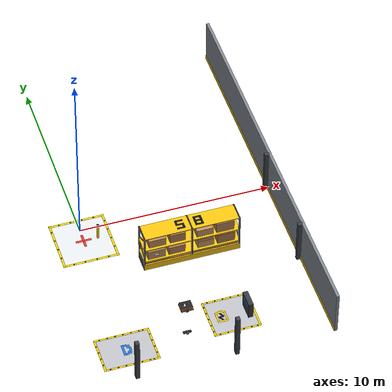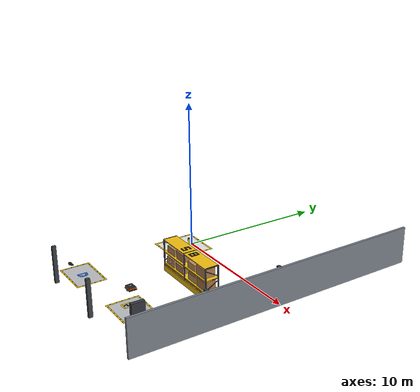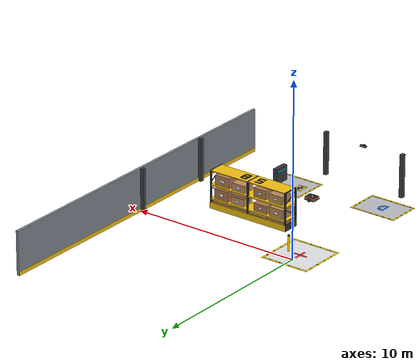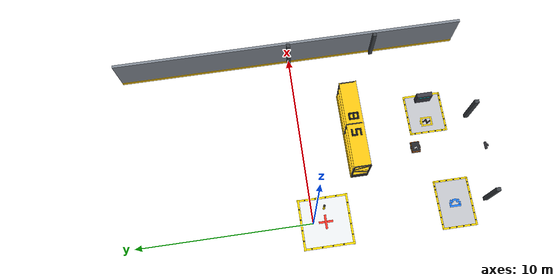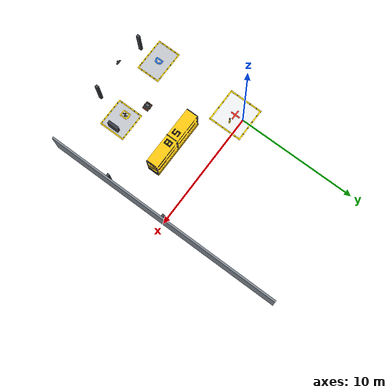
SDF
<sdf version="1.9">
 <world name="warehouse">
  <model name="east_wall">
   <static>true</static>
   <pose>10.0 0 1.25 0 0 0</pose>
   <link name="link">
    <collision name="col"><geometry><box><size>0.15 20.0 2.5</size></box></geometry></collision>
    <visual name="vis">
     <geometry><box><size>0.15 20.0 2.5</size></box></geometry>
     <material><ambient>0.40 0.43 0.46 1</ambient><diffuse>0.50 0.53 0.57 1</diffuse></material>
    </visual>
    <visual name="skirt">
     <pose>-0.08 0 -1.15 0 0 0</pose>
     <geometry><box><size>0.025 20.0 0.22</size></box></geometry>
     <material><ambient>0.88 0.68 0.04 1</ambient><diffuse>0.96 0.76 0.06 1</diffuse></material>
    </visual>
   </link>
  </model>
  <model name="pillar_s_r">
   <static>true</static>
   <pose>5.0 -9.85 1.25 0 0 0</pose>
   <link name="link">
    <visual name="vis">
     <geometry><box><size>0.20 0.25 2.5</size></box></geometry>
     <material><ambient>0.18 0.20 0.22 1</ambient><diffuse>0.24 0.26 0.28 1</diffuse></material>
    </visual>
   </link>
  </model>
  <model name="pillar_s_c">
   <static>true</static>
   <pose>0.0 -9.85 1.25 0 0 0</pose>
   <link name="link">
    <visual name="vis">
     <geometry><box><size>0.20 0.25 2.5</size></box></geometry>
     <material><ambient>0.18 0.20 0.22 1</ambient><diffuse>0.24 0.26 0.28 1</diffuse></material>
    </visual>
   </link>
  </model>
  <model name="pillar_e_s">
   <static>true</static>
   <pose>9.85 -5.00 1.25 0 0 0</pose>
   <link name="link">
    <visual name="vis">
     <geometry><box><size>0.25 0.20 2.5</size></box></geometry>
     <material><ambient>0.18 0.20 0.22 1</ambient><diffuse>0.24 0.26 0.28 1</diffuse></material>
    </visual>
   </link>
  </model>
  <model name="pillar_e_c">
   <static>true</static>
   <pose>9.85 0.0 1.25 0 0 0</pose>
   <link name="link">
    <visual name="vis">
     <geometry><box><size>0.25 0.20 2.5</size></box></geometry>
     <material><ambient>0.18 0.20 0.22 1</ambient><diffuse>0.24 0.26 0.28 1</diffuse></material>
    </visual>
   </link>
  </model>
  <model name="fixture_wall_s2">
   <static>true</static>
   <pose>2.5 -9.92 2.35 0 0 3.14159</pose>
   <link name="link">
    <visual name="bracket">
     <pose>0 -0.06 0 0 0 0</pose>
     <geometry><box><size>0.12 0.12 0.08</size></box></geometry>
     <material><ambient>0.12 0.12 0.14 1</ambient><diffuse>0.18 0.18 0.20 1</diffuse></material>
    </visual>
    <visual name="lamp">
     <pose>0 -0.14 -0.02 0.3 0 0</pose>
     <geometry><box><size>0.40 0.14 0.06</size></box></geometry>
     <material><ambient>0.12 0.12 0.14 1</ambient><diffuse>0.18 0.18 0.20 1</diffuse></material>
    </visual>
    <visual name="led_strip">
     <pose>0 -0.14 -0.05 0.3 0 0</pose>
     <geometry><box><size>0.36 0.10 0.01</size></box></geometry>
     <material>
      <ambient>0.9 0.9 0.85 1</ambient>
      <diffuse>1.0 1.0 0.9 1</diffuse>
      <emissive>0.95 0.95 0.85 1</emissive>
     </material>
    </visual>
   </link>
  </model>
  <include><uri>model://shelf</uri><name>shelf_rack_SE1</name><pose>4.8 -3.0 0 0 0 0</pose></include>
  <model name="intersection_I2_marker">
   <static>true</static>
   <pose>0 -0.7 0.005 0 0 0</pose>
   <link name="link">
    <visual name="marker_zone">
     <geometry><box><size>2.7 2.7 0.005</size></box></geometry>
     <material><ambient>0.82 0.83 0.84 1.0</ambient><diffuse>0.90 0.91 0.92 1.0</diffuse></material>
    </visual>
    <visual name="frame_n">
     <pose>0 1.38 0.006 0 0 0</pose>
     <geometry><box><size>2.9 0.11 0.006</size></box></geometry>
     <material><ambient>0.95 0.78 0.0 1</ambient><diffuse>1.0 0.84 0.0 1</diffuse></material>
    </visual>
    <visual name="frame_s">
     <pose>0 -1.38 0.006 0 0 0</pose>
     <geometry><box><size>2.9 0.11 0.006</size></box></geometry>
     <material><ambient>0.95 0.78 0.0 1</ambient><diffuse>1.0 0.84 0.0 1</diffuse></material>
    </visual>
    <visual name="frame_e">
     <pose>1.38 0 0.006 0 0 0</pose>
     <geometry><box><size>0.11 2.9 0.006</size></box></geometry>
     <material><ambient>0.95 0.78 0.0 1</ambient><diffuse>1.0 0.84 0.0 1</diffuse></material>
    </visual>
    <visual name="frame_w">
     <pose>-1.38 0 0.006 0 0 0</pose>
     <geometry><box><size>0.11 2.9 0.006</size></box></geometry>
     <material><ambient>0.95 0.78 0.0 1</ambient><diffuse>1.0 0.84 0.0 1</diffuse></material>
    </visual>
    <visual name="hz_n1">
     <pose>-0.9 1.38 0.007 0 0 0.7854</pose>
     <geometry><box><size>0.065 0.065 0.006</size></box></geometry>
     <material><ambient>0.08 0.08 0.08 1</ambient><diffuse>0.12 0.12 0.12 1</diffuse></material>
    </visual>
    <visual name="hz_n2">
     <pose>-0.3 1.38 0.007 0 0 0.7854</pose>
     <geometry><box><size>0.065 0.065 0.006</size></box></geometry>
     <material><ambient>0.08 0.08 0.08 1</ambient><diffuse>0.12 0.12 0.12 1</diffuse></material>
    </visual>
    <visual name="hz_n3">
     <pose>0.3 1.38 0.007 0 0 0.7854</pose>
     <geometry><box><size>0.065 0.065 0.006</size></box></geometry>
     <material><ambient>0.08 0.08 0.08 1</ambient><diffuse>0.12 0.12 0.12 1</diffuse></material>
    </visual>
    <visual name="hz_n4">
     <pose>0.9 1.38 0.007 0 0 0.7854</pose>
     <geometry><box><size>0.065 0.065 0.006</size></box></geometry>
     <material><ambient>0.08 0.08 0.08 1</ambient><diffuse>0.12 0.12 0.12 1</diffuse></material>
    </visual>
    <visual name="hz_s1">
     <pose>-0.9 -1.38 0.007 0 0 0.7854</pose>
     <geometry><box><size>0.065 0.065 0.006</size></box></geometry>
     <material><ambient>0.08 0.08 0.08 1</ambient><diffuse>0.12 0.12 0.12 1</diffuse></material>
    </visual>
    <visual name="hz_s2">
     <pose>-0.3 -1.38 0.007 0 0 0.7854</pose>
     <geometry><box><size>0.065 0.065 0.006</size></box></geometry>
     <material><ambient>0.08 0.08 0.08 1</ambient><diffuse>0.12 0.12 0.12 1</diffuse></material>
    </visual>
    <visual name="hz_s3">
     <pose>0.3 -1.38 0.007 0 0 0.7854</pose>
     <geometry><box><size>0.065 0.065 0.006</size></box></geometry>
     <material><ambient>0.08 0.08 0.08 1</ambient><diffuse>0.12 0.12 0.12 1</diffuse></material>
    </visual>
    <visual name="hz_s4">
     <pose>0.9 -1.38 0.007 0 0 0.7854</pose>
     <geometry><box><size>0.065 0.065 0.006</size></box></geometry>
     <material><ambient>0.08 0.08 0.08 1</ambient><diffuse>0.12 0.12 0.12 1</diffuse></material>
    </visual>
    <visual name="hz_e1">
     <pose>1.38 -0.8 0.007 0 0 0.7854</pose>
     <geometry><box><size>0.065 0.065 0.006</size></box></geometry>
     <material><ambient>0.08 0.08 0.08 1</ambient><diffuse>0.12 0.12 0.12 1</diffuse></material>
    </visual>
    <visual name="hz_e2">
     <pose>1.38 -0.2 0.007 0 0 0.7854</pose>
     <geometry><box><size>0.065 0.065 0.006</size></box></geometry>
     <material><ambient>0.08 0.08 0.08 1</ambient><diffuse>0.12 0.12 0.12 1</diffuse></material>
    </visual>
    <visual name="hz_e3">
     <pose>1.38 0.4 0.007 0 0 0.7854</pose>
     <geometry><box><size>0.065 0.065 0.006</size></box></geometry>
     <material><ambient>0.08 0.08 0.08 1</ambient><diffuse>0.12 0.12 0.12 1</diffuse></material>
    </visual>
    <visual name="hz_e4">
     <pose>1.38 1.0 0.007 0 0 0.7854</pose>
     <geometry><box><size>0.065 0.065 0.006</size></box></geometry>
     <material><ambient>0.08 0.08 0.08 1</ambient><diffuse>0.12 0.12 0.12 1</diffuse></material>
    </visual>
    <visual name="hz_w1">
     <pose>-1.38 -0.8 0.007 0 0 0.7854</pose>
     <geometry><box><size>0.065 0.065 0.006</size></box></geometry>
     <material><ambient>0.08 0.08 0.08 1</ambient><diffuse>0.12 0.12 0.12 1</diffuse></material>
    </visual>
    <visual name="hz_w2">
     <pose>-1.38 -0.2 0.007 0 0 0.7854</pose>
     <geometry><box><size>0.065 0.065 0.006</size></box></geometry>
     <material><ambient>0.08 0.08 0.08 1</ambient><diffuse>0.12 0.12 0.12 1</diffuse></material>
    </visual>
    <visual name="hz_w3">
     <pose>-1.38 0.4 0.007 0 0 0.7854</pose>
     <geometry><box><size>0.065 0.065 0.006</size></box></geometry>
     <material><ambient>0.08 0.08 0.08 1</ambient><diffuse>0.12 0.12 0.12 1</diffuse></material>
    </visual>
    <visual name="hz_w4">
     <pose>-1.38 1.0 0.007 0 0 0.7854</pose>
     <geometry><box><size>0.065 0.065 0.006</size></box></geometry>
     <material><ambient>0.08 0.08 0.08 1</ambient><diffuse>0.12 0.12 0.12 1</diffuse></material>
    </visual>
    <visual name="i2_cross_h">
     <pose>0 0 0.005 0 0 0</pose>
     <geometry><box><size>0.80 0.12 0.0015</size></box></geometry>
     <material><ambient>0.85 0.15 0.10 1</ambient><diffuse>0.95 0.2 0.15 1</diffuse></material>
    </visual>
    <visual name="i2_cross_v">
     <pose>0 0 0.005 0 0 0</pose>
     <geometry><box><size>0.12 0.80 0.0015</size></box></geometry>
     <material><ambient>0.85 0.15 0.10 1</ambient><diffuse>0.95 0.2 0.15 1</diffuse></material>
    </visual>
   </link>
  </model>
  <model name="bollard_r2">
   <static>true</static>
   <pose>0.75 -0.7 0.45 0 0 0</pose>
   <link name="link">
    <collision name="col">
     <geometry><cylinder><radius>0.06</radius><length>0.9</length></cylinder></geometry>
    </collision>
    <visual name="vis">
     <geometry><cylinder><radius>0.06</radius><length>0.9</length></cylinder></geometry>
     <material><ambient>0.95 0.78 0.0 1</ambient><diffuse>1.0 0.84 0.0 1</diffuse></material>
    </visual>
    <visual name="cap">
     <pose>0 0 0.46 0 0 0</pose>
     <geometry><sphere><radius>0.065</radius></sphere></geometry>
     <material><ambient>0.15 0.15 0.15 1</ambient><diffuse>0.20 0.20 0.20 1</diffuse></material>
    </visual>
   </link>
  </model>
  <model name="sign_D1">
   <static>true</static>
   <pose>0.0 -8.1 0.006 0 0 0</pose>
   <link name="link">
    <visual name="d1_sv">
     <pose>-0.16 0 0 0 0 0</pose>
     <geometry><box><size>0.11 0.64 0.0015</size></box></geometry>
     <material><ambient>0.08 0.38 0.90 1</ambient><diffuse>0.12 0.48 1.0 1</diffuse></material>
    </visual>
    <visual name="d1_th">
     <pose>-0.03 0.265 0 0 0 0</pose>
     <geometry><box><size>0.18 0.11 0.0015</size></box></geometry>
     <material><ambient>0.08 0.38 0.90 1</ambient><diffuse>0.12 0.48 1.0 1</diffuse></material>
    </visual>
    <visual name="d1_bh">
     <pose>-0.03 -0.265 0 0 0 0</pose>
     <geometry><box><size>0.18 0.11 0.0015</size></box></geometry>
     <material><ambient>0.08 0.38 0.90 1</ambient><diffuse>0.12 0.48 1.0 1</diffuse></material>
    </visual>
    <visual name="d1_tr_diag">
     <pose>0.11 0.18 0 0 0 -0.7854</pose>
     <geometry><box><size>0.11 0.20 0.0015</size></box></geometry>
     <material><ambient>0.08 0.38 0.90 1</ambient><diffuse>0.12 0.48 1.0 1</diffuse></material>
    </visual>
    <visual name="d1_br_diag">
     <pose>0.11 -0.18 0 0 0 0.7854</pose>
     <geometry><box><size>0.11 0.20 0.0015</size></box></geometry>
     <material><ambient>0.08 0.38 0.90 1</ambient><diffuse>0.12 0.48 1.0 1</diffuse></material>
    </visual>
    <visual name="d1_rv">
     <pose>0.18 0 0 0 0 0</pose>
     <geometry><box><size>0.11 0.26 0.0015</size></box></geometry>
     <material><ambient>0.08 0.38 0.90 1</ambient><diffuse>0.12 0.48 1.0 1</diffuse></material>
    </visual>
   </link>
  </model>
  <model name="sign_CHARGE">
   <static>true</static>
   <pose>5.0 -7.5 0.006 0 0 0</pose>
   <link name="link">
    <visual name="bt_top">
     <pose>0 0.28 0 0 0 0</pose>
     <geometry><box><size>0.54 0.09 0.0015</size></box></geometry>
     <material><ambient>0.92 0.72 0.0 1</ambient><diffuse>1.0 0.82 0.05 1</diffuse></material>
    </visual>
    <visual name="bt_bot">
     <pose>0 -0.28 0 0 0 0</pose>
     <geometry><box><size>0.54 0.09 0.0015</size></box></geometry>
     <material><ambient>0.92 0.72 0.0 1</ambient><diffuse>1.0 0.82 0.05 1</diffuse></material>
    </visual>
    <visual name="bt_lft">
     <pose>-0.225 0 0 0 0 0</pose>
     <geometry><box><size>0.09 0.47 0.0015</size></box></geometry>
     <material><ambient>0.92 0.72 0.0 1</ambient><diffuse>1.0 0.82 0.05 1</diffuse></material>
    </visual>
    <visual name="bt_rgt">
     <pose>0.225 0 0 0 0 0</pose>
     <geometry><box><size>0.09 0.47 0.0015</size></box></geometry>
     <material><ambient>0.92 0.72 0.0 1</ambient><diffuse>1.0 0.82 0.05 1</diffuse></material>
    </visual>
    <visual name="bt_cap">
     <pose>0 0.35 0 0 0 0</pose>
     <geometry><box><size>0.22 0.06 0.0015</size></box></geometry>
     <material><ambient>0.92 0.72 0.0 1</ambient><diffuse>1.0 0.82 0.05 1</diffuse></material>
    </visual>
    <visual name="bt_bolt_u">
     <pose>0.045 0.11 0.0005 0 0 0.55</pose>
     <geometry><box><size>0.08 0.28 0.0015</size></box></geometry>
     <material><ambient>0.06 0.06 0.06 1</ambient><diffuse>0.10 0.10 0.10 1</diffuse></material>
    </visual>
    <visual name="bt_bolt_m">
     <pose>0 0 0.0005 0 0 0</pose>
     <geometry><box><size>0.24 0.08 0.0015</size></box></geometry>
     <material><ambient>0.06 0.06 0.06 1</ambient><diffuse>0.10 0.10 0.10 1</diffuse></material>
    </visual>
    <visual name="bt_bolt_l">
     <pose>-0.045 -0.11 0.0005 0 0 0.55</pose>
     <geometry><box><size>0.08 0.28 0.0015</size></box></geometry>
     <material><ambient>0.06 0.06 0.06 1</ambient><diffuse>0.10 0.10 0.10 1</diffuse></material>
    </visual>
   </link>
  </model>
  <model name="sign_S8">
   <static>true</static>
   <pose>4.8 -3.0 2.201 0 0 0</pose>
   <link name="link">
    <visual name="s8_s_top">
     <pose>-0.50 0.24 0 0 0 0</pose>
     <geometry><box><size>0.42 0.10 0.0015</size></box></geometry>
     <material><ambient>0.06 0.06 0.06 1</ambient><diffuse>0.10 0.10 0.10 1</diffuse></material>
    </visual>
    <visual name="s8_s_tlv">
     <pose>-0.66 0.12 0 0 0 0</pose>
     <geometry><box><size>0.10 0.28 0.0015</size></box></geometry>
     <material><ambient>0.06 0.06 0.06 1</ambient><diffuse>0.10 0.10 0.10 1</diffuse></material>
    </visual>
    <visual name="s8_s_mid">
     <pose>-0.50 0 0 0 0 0</pose>
     <geometry><box><size>0.42 0.10 0.0015</size></box></geometry>
     <material><ambient>0.06 0.06 0.06 1</ambient><diffuse>0.10 0.10 0.10 1</diffuse></material>
    </visual>
    <visual name="s8_s_brv">
     <pose>-0.34 -0.12 0 0 0 0</pose>
     <geometry><box><size>0.10 0.28 0.0015</size></box></geometry>
     <material><ambient>0.06 0.06 0.06 1</ambient><diffuse>0.10 0.10 0.10 1</diffuse></material>
    </visual>
    <visual name="s8_s_bot">
     <pose>-0.50 -0.24 0 0 0 0</pose>
     <geometry><box><size>0.42 0.10 0.0015</size></box></geometry>
     <material><ambient>0.06 0.06 0.06 1</ambient><diffuse>0.10 0.10 0.10 1</diffuse></material>
    </visual>
    <visual name="s8_8_th">
     <pose>0.45 0.24 0 0 0 0</pose>
     <geometry><box><size>0.42 0.10 0.0015</size></box></geometry>
     <material><ambient>0.06 0.06 0.06 1</ambient><diffuse>0.10 0.10 0.10 1</diffuse></material>
    </visual>
    <visual name="s8_8_tlv">
     <pose>0.29 0.12 0 0 0 0</pose>
     <geometry><box><size>0.10 0.28 0.0015</size></box></geometry>
     <material><ambient>0.06 0.06 0.06 1</ambient><diffuse>0.10 0.10 0.10 1</diffuse></material>
    </visual>
    <visual name="s8_8_trv">
     <pose>0.61 0.12 0 0 0 0</pose>
     <geometry><box><size>0.10 0.28 0.0015</size></box></geometry>
     <material><ambient>0.06 0.06 0.06 1</ambient><diffuse>0.10 0.10 0.10 1</diffuse></material>
    </visual>
    <visual name="s8_8_mh">
     <pose>0.45 0 0 0 0 0</pose>
     <geometry><box><size>0.42 0.10 0.0015</size></box></geometry>
     <material><ambient>0.06 0.06 0.06 1</ambient><diffuse>0.10 0.10 0.10 1</diffuse></material>
    </visual>
    <visual name="s8_8_blv">
     <pose>0.29 -0.12 0 0 0 0</pose>
     <geometry><box><size>0.10 0.28 0.0015</size></box></geometry>
     <material><ambient>0.06 0.06 0.06 1</ambient><diffuse>0.10 0.10 0.10 1</diffuse></material>
    </visual>
    <visual name="s8_8_brv">
     <pose>0.61 -0.12 0 0 0 0</pose>
     <geometry><box><size>0.10 0.28 0.0015</size></box></geometry>
     <material><ambient>0.06 0.06 0.06 1</ambient><diffuse>0.10 0.10 0.10 1</diffuse></material>
    </visual>
    <visual name="s8_8_bh">
     <pose>0.45 -0.24 0 0 0 0</pose>
     <geometry><box><size>0.42 0.10 0.0015</size></box></geometry>
     <material><ambient>0.06 0.06 0.06 1</ambient><diffuse>0.10 0.10 0.10 1</diffuse></material>
    </visual>
   </link>
  </model>
  <include><uri>model://drop_station</uri><name>drop_pack_D1</name><pose>0 -8.1 0 0 0 0</pose></include>
  <include><uri>model://charging_station</uri><name>charging_bay</name><pose>5.5 -7.5 0 0 0 0</pose></include>
  <include><uri>model://amr_orange</uri><name>amr_orange</name><pose>3.5 -6.5 0.05 0 0 3.141592</pose></include>
 </world>
</sdf>
